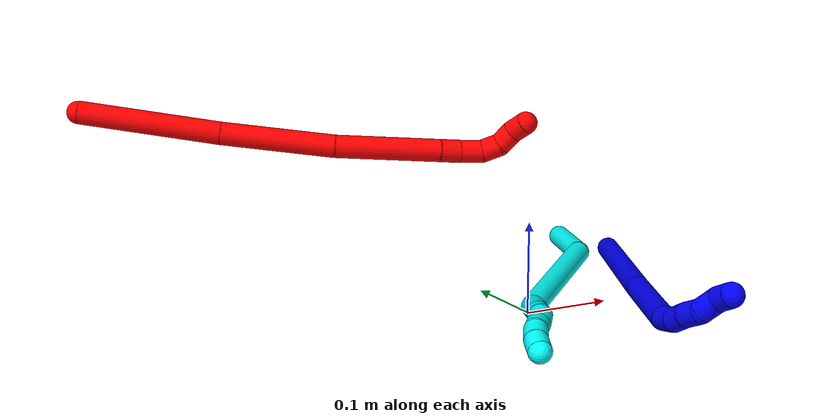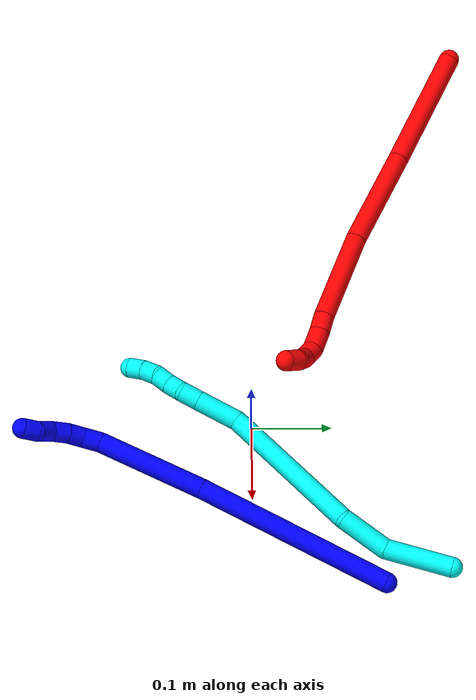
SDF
<sdf version="1.7">
 <world name="default">
  <plugin name="TubeGeneratorPlugin" filename="libtube_generator_plugin.so"/>
  <model name="photoneo_s_sensor">
   <static>1</static>
   <pose>0 0 2 1.57079 1.57079 3.14159</pose>
   <link name="link">
    <inertial><mass>0.1</mass></inertial>
    <sensor name="sensor" type="depth">
     <update_rate>30</update_rate>
     <camera>
      <horizontal_fov>1.22</horizontal_fov>
      <image><width>1920</width><height>1200</height><format>B8G8R8</format></image>
      <clip><near>0.1</near><far>4</far></clip>
      <depth_camera><output>points</output></depth_camera>
     </camera>
     <plugin name="camera_plugin" filename="libgazebo_ros_depth_camera.so">
      <baseline>0.2</baseline>
      <alwaysOn>1</alwaysOn>
      <updateRate>0.0</updateRate>
      <cameraName>camera_ir</cameraName>
      <imageTopicName>/camera/color/image_raw</imageTopicName>
      <cameraInfoTopicName>/camera/color/camera_info</cameraInfoTopicName>
      <depthImageTopicName>/camera/depth/image_raw</depthImageTopicName>
      <depthImageCameraInfoTopicName>/camera/depth/camera_info</depthImageCameraInfoTopicName>
      <pointCloudTopicName>/camera/depth/points</pointCloudTopicName>
      <frameName>fr_optical</frameName>
      <pointCloudCutoff>0.1</pointCloudCutoff>
      <pointCloudCutoffMax>2.0</pointCloudCutoffMax>
      <distortionK1>0</distortionK1>
      <distortionK2>0</distortionK2>
      <distortionK3>0</distortionK3>
      <distortionT1>0</distortionT1>
      <distortionT2>0</distortionT2>
      <CxPrime>0</CxPrime>
      <Cx>0</Cx>
      <Cy>0</Cy>
      <focalLength>0</focalLength>
      <hackBaseline>0</hackBaseline>
     </plugin>
    </sensor>
   </link>
  </model>
  <gravity>0 0 -9.8</gravity>
  <magnetic_field>6e-06 2.3e-05 -4.2e-05</magnetic_field>
  <atmosphere type="adiabatic"/>
  <physics name="default_physics" default="0" type="ode">
   <max_step_size>0.003</max_step_size>
   <real_time_factor>1</real_time_factor>
   <real_time_update_rate>1000</real_time_update_rate>
   <max_contacts>10000</max_contacts>
   <ode>
    <solver>
     <type>quick</type>
     <iters>100</iters>
     <sor>1.3</sor>
     <use_dynamic_moi_rescaling>0</use_dynamic_moi_rescaling>
    </solver>
    <constraints>
     <contact_max_correcting_vel>0</contact_max_correcting_vel>
     <contact_surface_layer>0.001</contact_surface_layer>
     <cfm>0</cfm>
     <erp>0.2</erp>
    </constraints>
   </ode>
  </physics>
  <scene><ambient>0.4 0.4 0.4 1</ambient><background>0.7 0.7 0.7 1</background><shadows>0</shadows></scene>
  <audio><device>default</device></audio>
  <spherical_coordinates>
   <surface_model>EARTH_WGS84</surface_model>
   <latitude_deg>0</latitude_deg>
   <longitude_deg>0</longitude_deg>
   <elevation>0</elevation>
   <heading_deg>0</heading_deg>
  </spherical_coordinates>
  <model name="bin">
   <static>1</static>
   <link name="bottom">
    <collision name="collision-bottom">
     <pose>0 0 -0.01 0 -0 0</pose>
     <geometry><box><size>0.8 0.6 0.02</size></box></geometry>
     <surface>
      <friction><ode><mu>100</mu><mu2>100</mu2></ode></friction>
      <contact><collide_bitmask>65535</collide_bitmask></contact>
     </surface>
    </collision>
   </link>
   <link name="west_wall">
    <collision name="collision-west_wall">
     <pose>-0.41 0 0.1 0 -0 0</pose>
     <geometry><box><size>0.02 0.6 0.2</size></box></geometry>
     <surface>
      <friction><ode><mu>100</mu><mu2>100</mu2></ode></friction>
      <contact><collide_bitmask>65535</collide_bitmask></contact>
     </surface>
    </collision>
   </link>
   <link name="east_wall">
    <collision name="collision-east_wall">
     <pose>0.41 0 0.1 0 -0 0</pose>
     <geometry><box><size>0.02 0.6 0.2</size></box></geometry>
     <surface>
      <friction><ode><mu>100</mu><mu2>100</mu2></ode></friction>
      <contact><collide_bitmask>65535</collide_bitmask></contact>
     </surface>
    </collision>
   </link>
   <link name="south_wall">
    <collision name="collision-south_wall">
     <pose>0 -0.31 0.1 0 -0 0</pose>
     <geometry><box><size>0.8 0.02 0.2</size></box></geometry>
     <surface>
      <friction><ode><mu>100</mu><mu2>100</mu2></ode></friction>
      <contact><collide_bitmask>65535</collide_bitmask></contact>
     </surface>
    </collision>
   </link>
   <link name="north_wall">
    <collision name="collision-north_wall">
     <pose>0 0.31 0.1 0 -0 0</pose>
     <geometry><box><size>0.8 0.02 0.2</size></box></geometry>
     <surface>
      <friction><ode><mu>100</mu><mu2>100</mu2></ode></friction>
      <contact><collide_bitmask>65535</collide_bitmask></contact>
     </surface>
    </collision>
   </link>
  </model>
  <model name="1">
   <static>0</static>
   <link name="1">
    <collision name="collision-cylinder-e_1_1_4">
     <pose>-0.09721 -0.041036 -0.070021 2.61149 -0.87514 -2.09009</pose>
     <geometry><cylinder><radius>0.0125</radius><length>0.253272</length></cylinder></geometry>
     <surface>
      <friction><ode><mu>1.16</mu><mu2>1.16</mu2><slip1>0</slip1><slip2>0</slip2></ode></friction>
      <contact><ode><kp>1e+06</kp><kd>1</kd><max_vel>0</max_vel><min_depth>0.001</min_depth></ode></contact>
     </surface>
    </collision>
    <visual name="visual-cylinder-e_1_1_4">
     <pose>-0.09721 -0.041036 -0.070021 2.61149 -0.87514 -2.09009</pose>
     <geometry><cylinder><radius>0.0125</radius><length>0.253272</length></cylinder></geometry>
     <material><ambient>0 0 1 1</ambient></material>
    </visual>
    <collision name="collision-cylinder-e_2_4_5">
     <pose>-0.249559 -0.103907 -0.176519 2.60221 -0.913976 -2.1173</pose>
     <geometry><cylinder><radius>0.0125</radius><length>0.139251</length></cylinder></geometry>
     <surface>
      <friction><ode><mu>1.16</mu><mu2>1.16</mu2><slip1>0</slip1><slip2>0</slip2></ode></friction>
      <contact><ode><kp>1e+06</kp><kd>1</kd><max_vel>0</max_vel><min_depth>0.001</min_depth></ode></contact>
     </surface>
    </collision>
    <visual name="visual-cylinder-e_2_4_5">
     <pose>-0.249559 -0.103907 -0.176519 2.60221 -0.913976 -2.1173</pose>
     <geometry><cylinder><radius>0.0125</radius><length>0.139251</length></cylinder></geometry>
     <material><ambient>0 0 1 1</ambient></material>
    </visual>
    <collision name="collision-cylinder-e_3_5_6">
     <pose>-0.314666 -0.125978 -0.219106 3.10304 -1.02064 -3.07275</pose>
     <geometry><cylinder><radius>0.0125</radius><length>0.023387</length></cylinder></geometry>
     <surface>
      <friction><ode><mu>1.16</mu><mu2>1.16</mu2><slip1>0</slip1><slip2>0</slip2></ode></friction>
      <contact><ode><kp>1e+06</kp><kd>1</kd><max_vel>0</max_vel><min_depth>0.001</min_depth></ode></contact>
     </surface>
    </collision>
    <visual name="visual-cylinder-e_3_5_6">
     <pose>-0.314666 -0.125978 -0.219106 3.10304 -1.02064 -3.07275</pose>
     <geometry><cylinder><radius>0.0125</radius><length>0.023387</length></cylinder></geometry>
     <material><ambient>0 0 1 1</ambient></material>
    </visual>
    <collision name="collision-cylinder-e_4_6_7">
     <pose>-0.332075 -0.123606 -0.231367 -2.74078 -0.839108 2.28689</pose>
     <geometry><cylinder><radius>0.0125</radius><length>0.020002</length></cylinder></geometry>
     <surface>
      <friction><ode><mu>1.16</mu><mu2>1.16</mu2><slip1>0</slip1><slip2>0</slip2></ode></friction>
      <contact><ode><kp>1e+06</kp><kd>1</kd><max_vel>0</max_vel><min_depth>0.001</min_depth></ode></contact>
     </surface>
    </collision>
    <visual name="visual-cylinder-e_4_6_7">
     <pose>-0.332075 -0.123606 -0.231367 -2.74078 -0.839108 2.28689</pose>
     <geometry><cylinder><radius>0.0125</radius><length>0.020002</length></cylinder></geometry>
     <material><ambient>0 0 1 1</ambient></material>
    </visual>
    <collision name="collision-cylinder-e_5_7_8">
     <pose>-0.348299 -0.117535 -0.24289 -2.56874 -0.941788 2.09262</pose>
     <geometry><cylinder><radius>0.0125</radius><length>0.021724</length></cylinder></geometry>
     <surface>
      <friction><ode><mu>1.16</mu><mu2>1.16</mu2><slip1>0</slip1><slip2>0</slip2></ode></friction>
      <contact><ode><kp>1e+06</kp><kd>1</kd><max_vel>0</max_vel><min_depth>0.001</min_depth></ode></contact>
     </surface>
    </collision>
    <visual name="visual-cylinder-e_5_7_8">
     <pose>-0.348299 -0.117535 -0.24289 -2.56874 -0.941788 2.09262</pose>
     <geometry><cylinder><radius>0.0125</radius><length>0.021724</length></cylinder></geometry>
     <material><ambient>0 0 1 1</ambient></material>
    </visual>
    <collision name="collision-cylinder-e_6_8_9">
     <pose>-0.363213 -0.106396 -0.253483 -2.16835 -0.583592 1.03273</pose>
     <geometry><cylinder><radius>0.0125</radius><length>0.022251</length></cylinder></geometry>
     <surface>
      <friction><ode><mu>1.16</mu><mu2>1.16</mu2><slip1>0</slip1><slip2>0</slip2></ode></friction>
      <contact><ode><kp>1e+06</kp><kd>1</kd><max_vel>0</max_vel><min_depth>0.001</min_depth></ode></contact>
     </surface>
    </collision>
    <visual name="visual-cylinder-e_6_8_9">
     <pose>-0.363213 -0.106396 -0.253483 -2.16835 -0.583592 1.03273</pose>
     <geometry><cylinder><radius>0.0125</radius><length>0.022251</length></cylinder></geometry>
     <material><ambient>0 0 1 1</ambient></material>
    </visual>
    <collision name="collision-cylinder-e_7_9_2">
     <pose>-0.377274 -0.096077 -0.264298 -2.69987 -0.9085 2.27965</pose>
     <geometry><cylinder><radius>0.0125</radius><length>0.020114</length></cylinder></geometry>
     <surface>
      <friction><ode><mu>1.16</mu><mu2>1.16</mu2><slip1>0</slip1><slip2>0</slip2></ode></friction>
      <contact><ode><kp>1e+06</kp><kd>1</kd><max_vel>0</max_vel><min_depth>0.001</min_depth></ode></contact>
     </surface>
    </collision>
    <visual name="visual-cylinder-e_7_9_2">
     <pose>-0.377274 -0.096077 -0.264298 -2.69987 -0.9085 2.27965</pose>
     <geometry><cylinder><radius>0.0125</radius><length>0.020114</length></cylinder></geometry>
     <material><ambient>0 0 1 1</ambient></material>
    </visual>
    <collision name="collision-sphere-2">
     <pose>-0.385205 -0.093433 -0.269889 0 -0 0</pose>
     <geometry><sphere><radius>0.0125</radius></sphere></geometry>
     <surface>
      <friction><ode><mu>1.16</mu><mu2>1.16</mu2><slip1>0</slip1><slip2>0</slip2></ode></friction>
      <contact><ode><kp>1e+06</kp><kd>1</kd><max_vel>0</max_vel><min_depth>0.001</min_depth></ode></contact>
     </surface>
    </collision>
    <visual name="visual-sphere-2">
     <pose>-0.385205 -0.093433 -0.269889 0 -0 0</pose>
     <geometry><sphere><radius>0.0125</radius></sphere></geometry>
     <material><ambient>0 0 1 1</ambient></material>
    </visual>
    <collision name="collision-sphere-9">
     <pose>-0.369343 -0.098721 -0.258707 0 -0 0</pose>
     <geometry><sphere><radius>0.0125</radius></sphere></geometry>
     <surface>
      <friction><ode><mu>1.16</mu><mu2>1.16</mu2><slip1>0</slip1><slip2>0</slip2></ode></friction>
      <contact><ode><kp>1e+06</kp><kd>1</kd><max_vel>0</max_vel><min_depth>0.001</min_depth></ode></contact>
     </surface>
    </collision>
    <visual name="visual-sphere-9">
     <pose>-0.369343 -0.098721 -0.258707 0 -0 0</pose>
     <geometry><sphere><radius>0.0125</radius></sphere></geometry>
     <material><ambient>0 0 1 1</ambient></material>
    </visual>
    <collision name="collision-sphere-4">
     <pose>-0.19442 -0.082072 -0.140042 0 -0 0</pose>
     <geometry><sphere><radius>0.0125</radius></sphere></geometry>
     <surface>
      <friction><ode><mu>1.16</mu><mu2>1.16</mu2><slip1>0</slip1><slip2>0</slip2></ode></friction>
      <contact><ode><kp>1e+06</kp><kd>1</kd><max_vel>0</max_vel><min_depth>0.001</min_depth></ode></contact>
     </surface>
    </collision>
    <visual name="visual-sphere-4">
     <pose>-0.19442 -0.082072 -0.140042 0 -0 0</pose>
     <geometry><sphere><radius>0.0125</radius></sphere></geometry>
     <material><ambient>0 0 1 1</ambient></material>
    </visual>
    <collision name="collision-sphere-1">
     <geometry><sphere><radius>0.0125</radius></sphere></geometry>
     <surface>
      <friction><ode><mu>1.16</mu><mu2>1.16</mu2><slip1>0</slip1><slip2>0</slip2></ode></friction>
      <contact><ode><kp>1e+06</kp><kd>1</kd><max_vel>0</max_vel><min_depth>0.001</min_depth></ode></contact>
     </surface>
    </collision>
    <visual name="visual-sphere-1">
     <geometry><sphere><radius>0.0125</radius></sphere></geometry>
     <material><ambient>0 0 1 1</ambient></material>
    </visual>
    <collision name="collision-sphere-8">
     <pose>-0.357082 -0.114071 -0.24826 0 -0 0</pose>
     <geometry><sphere><radius>0.0125</radius></sphere></geometry>
     <surface>
      <friction><ode><mu>1.16</mu><mu2>1.16</mu2><slip1>0</slip1><slip2>0</slip2></ode></friction>
      <contact><ode><kp>1e+06</kp><kd>1</kd><max_vel>0</max_vel><min_depth>0.001</min_depth></ode></contact>
     </surface>
    </collision>
    <visual name="visual-sphere-8">
     <pose>-0.357082 -0.114071 -0.24826 0 -0 0</pose>
     <geometry><sphere><radius>0.0125</radius></sphere></geometry>
     <material><ambient>0 0 1 1</ambient></material>
    </visual>
    <collision name="collision-sphere-5">
     <pose>-0.304698 -0.125742 -0.212997 0 -0 0</pose>
     <geometry><sphere><radius>0.0125</radius></sphere></geometry>
     <surface>
      <friction><ode><mu>1.16</mu><mu2>1.16</mu2><slip1>0</slip1><slip2>0</slip2></ode></friction>
      <contact><ode><kp>1e+06</kp><kd>1</kd><max_vel>0</max_vel><min_depth>0.001</min_depth></ode></contact>
     </surface>
    </collision>
    <visual name="visual-sphere-5">
     <pose>-0.304698 -0.125742 -0.212997 0 -0 0</pose>
     <geometry><sphere><radius>0.0125</radius></sphere></geometry>
     <material><ambient>0 0 1 1</ambient></material>
    </visual>
    <collision name="collision-sphere-6">
     <pose>-0.324634 -0.126213 -0.225215 0 -0 0</pose>
     <geometry><sphere><radius>0.0125</radius></sphere></geometry>
     <surface>
      <friction><ode><mu>1.16</mu><mu2>1.16</mu2><slip1>0</slip1><slip2>0</slip2></ode></friction>
      <contact><ode><kp>1e+06</kp><kd>1</kd><max_vel>0</max_vel><min_depth>0.001</min_depth></ode></contact>
     </surface>
    </collision>
    <visual name="visual-sphere-6">
     <pose>-0.324634 -0.126213 -0.225215 0 -0 0</pose>
     <geometry><sphere><radius>0.0125</radius></sphere></geometry>
     <material><ambient>0 0 1 1</ambient></material>
    </visual>
    <collision name="collision-sphere-7">
     <pose>-0.339516 -0.120999 -0.23752 0 -0 0</pose>
     <geometry><sphere><radius>0.0125</radius></sphere></geometry>
     <surface>
      <friction><ode><mu>1.16</mu><mu2>1.16</mu2><slip1>0</slip1><slip2>0</slip2></ode></friction>
      <contact><ode><kp>1e+06</kp><kd>1</kd><max_vel>0</max_vel><min_depth>0.001</min_depth></ode></contact>
     </surface>
    </collision>
    <visual name="visual-sphere-7">
     <pose>-0.339516 -0.120999 -0.23752 0 -0 0</pose>
     <geometry><sphere><radius>0.0125</radius></sphere></geometry>
     <material><ambient>0 0 1 1</ambient></material>
    </visual>
    <inertial>
     <pose>-0.193219 -0.074268 -0.136599 0 -0 0</pose>
     <mass>0.5</mass>
     <inertia>
      <ixx>-0.001414</ixx>
      <ixy>0</ixy>
      <ixz>0</ixz>
      <iyy>0.000349</iyy>
      <iyz>0</iyz>
      <izz>0.001726</izz>
     </inertia>
    </inertial>
   </link>
   <pose>0.219458 0.161072 0.011947 2.49354 -0.218392 1.71379</pose>
  </model>
  <model name="2">
   <static>0</static>
   <link name="2">
    <collision name="collision-cylinder-e_1_1_4">
     <pose>-0.002644 -0.00409 -0.076487 3.08818 -0.0345 -1.14681</pose>
     <geometry><cylinder><radius>0.0125</radius><length>0.153283</length></cylinder></geometry>
     <surface>
      <friction><ode><mu>1.16</mu><mu2>1.16</mu2><slip1>0</slip1><slip2>0</slip2></ode></friction>
      <contact><ode><kp>1e+06</kp><kd>1</kd><max_vel>0</max_vel><min_depth>0.001</min_depth></ode></contact>
     </surface>
    </collision>
    <visual name="visual-cylinder-e_1_1_4">
     <pose>-0.002644 -0.00409 -0.076487 3.08818 -0.0345 -1.14681</pose>
     <geometry><cylinder><radius>0.0125</radius><length>0.153283</length></cylinder></geometry>
     <material><ambient>1 0 0 1</ambient></material>
    </visual>
    <collision name="collision-cylinder-e_2_4_5">
     <pose>-0.005435 -0.012428 -0.214661 3.07281 -0.002384 -0.069278</pose>
     <geometry><cylinder><radius>0.0125</radius><length>0.123668</length></cylinder></geometry>
     <surface>
      <friction><ode><mu>1.16</mu><mu2>1.16</mu2><slip1>0</slip1><slip2>0</slip2></ode></friction>
      <contact><ode><kp>1e+06</kp><kd>1</kd><max_vel>0</max_vel><min_depth>0.001</min_depth></ode></contact>
     </surface>
    </collision>
    <visual name="visual-cylinder-e_2_4_5">
     <pose>-0.005435 -0.012428 -0.214661 3.07281 -0.002384 -0.069278</pose>
     <geometry><cylinder><radius>0.0125</radius><length>0.123668</length></cylinder></geometry>
     <material><ambient>1 0 0 1</ambient></material>
    </visual>
    <collision name="collision-cylinder-e_3_5_6">
     <pose>-0.001101 -0.016094 -0.333577 -3.13139 0.078131 -2.88194</pose>
     <geometry><cylinder><radius>0.0125</radius><length>0.114813</length></cylinder></geometry>
     <surface>
      <friction><ode><mu>1.16</mu><mu2>1.16</mu2><slip1>0</slip1><slip2>0</slip2></ode></friction>
      <contact><ode><kp>1e+06</kp><kd>1</kd><max_vel>0</max_vel><min_depth>0.001</min_depth></ode></contact>
     </surface>
    </collision>
    <visual name="visual-cylinder-e_3_5_6">
     <pose>-0.001101 -0.016094 -0.333577 -3.13139 0.078131 -2.88194</pose>
     <geometry><cylinder><radius>0.0125</radius><length>0.114813</length></cylinder></geometry>
     <material><ambient>1 0 0 1</ambient></material>
    </visual>
    <collision name="collision-cylinder-e_4_6_7">
     <pose>0.004353 -0.014302 -0.401814 -3.03236 0.087667 -1.35227</pose>
     <geometry><cylinder><radius>0.0125</radius><length>0.022235</length></cylinder></geometry>
     <surface>
      <friction><ode><mu>1.16</mu><mu2>1.16</mu2><slip1>0</slip1><slip2>0</slip2></ode></friction>
      <contact><ode><kp>1e+06</kp><kd>1</kd><max_vel>0</max_vel><min_depth>0.001</min_depth></ode></contact>
     </surface>
    </collision>
    <visual name="visual-cylinder-e_4_6_7">
     <pose>0.004353 -0.014302 -0.401814 -3.03236 0.087667 -1.35227</pose>
     <geometry><cylinder><radius>0.0125</radius><length>0.022235</length></cylinder></geometry>
     <material><ambient>1 0 0 1</ambient></material>
    </visual>
    <collision name="collision-cylinder-e_5_7_8">
     <pose>0.006802 -0.012743 -0.425217 -3.11321 0.118501 -2.67185</pose>
     <geometry><cylinder><radius>0.0125</radius><length>0.024973</length></cylinder></geometry>
     <surface>
      <friction><ode><mu>1.16</mu><mu2>1.16</mu2><slip1>0</slip1><slip2>0</slip2></ode></friction>
      <contact><ode><kp>1e+06</kp><kd>1</kd><max_vel>0</max_vel><min_depth>0.001</min_depth></ode></contact>
     </surface>
    </collision>
    <visual name="visual-cylinder-e_5_7_8">
     <pose>0.006802 -0.012743 -0.425217 -3.11321 0.118501 -2.67185</pose>
     <geometry><cylinder><radius>0.0125</radius><length>0.024973</length></cylinder></geometry>
     <material><ambient>1 0 0 1</ambient></material>
    </visual>
    <collision name="collision-cylinder-e_6_8_9">
     <pose>0.012701 -0.015216 -0.446539 2.83518 0.441224 1.9356</pose>
     <geometry><cylinder><radius>0.0125</radius><length>0.020712</length></cylinder></geometry>
     <surface>
      <friction><ode><mu>1.16</mu><mu2>1.16</mu2><slip1>0</slip1><slip2>0</slip2></ode></friction>
      <contact><ode><kp>1e+06</kp><kd>1</kd><max_vel>0</max_vel><min_depth>0.001</min_depth></ode></contact>
     </surface>
    </collision>
    <visual name="visual-cylinder-e_6_8_9">
     <pose>0.012701 -0.015216 -0.446539 2.83518 0.441224 1.9356</pose>
     <geometry><cylinder><radius>0.0125</radius><length>0.020712</length></cylinder></geometry>
     <material><ambient>1 0 0 1</ambient></material>
    </visual>
    <collision name="collision-cylinder-e_7_9_10">
     <pose>0.024718 -0.0213 -0.461207 2.62508 0.855312 2.09108</pose>
     <geometry><cylinder><radius>0.0125</radius><length>0.020122</length></cylinder></geometry>
     <surface>
      <friction><ode><mu>1.16</mu><mu2>1.16</mu2><slip1>0</slip1><slip2>0</slip2></ode></friction>
      <contact><ode><kp>1e+06</kp><kd>1</kd><max_vel>0</max_vel><min_depth>0.001</min_depth></ode></contact>
     </surface>
    </collision>
    <visual name="visual-cylinder-e_7_9_10">
     <pose>0.024718 -0.0213 -0.461207 2.62508 0.855312 2.09108</pose>
     <geometry><cylinder><radius>0.0125</radius><length>0.020122</length></cylinder></geometry>
     <material><ambient>1 0 0 1</ambient></material>
    </visual>
    <collision name="collision-cylinder-e_8_10_2">
     <pose>0.03696 -0.031556 -0.472547 2.24593 0.478452 0.9396</pose>
     <geometry><cylinder><radius>0.0125</radius><length>0.020193</length></cylinder></geometry>
     <surface>
      <friction><ode><mu>1.16</mu><mu2>1.16</mu2><slip1>0</slip1><slip2>0</slip2></ode></friction>
      <contact><ode><kp>1e+06</kp><kd>1</kd><max_vel>0</max_vel><min_depth>0.001</min_depth></ode></contact>
     </surface>
    </collision>
    <visual name="visual-cylinder-e_8_10_2">
     <pose>0.03696 -0.031556 -0.472547 2.24593 0.478452 0.9396</pose>
     <geometry><cylinder><radius>0.0125</radius><length>0.020193</length></cylinder></geometry>
     <material><ambient>1 0 0 1</ambient></material>
    </visual>
    <collision name="collision-sphere-2">
     <pose>0.041608 -0.038552 -0.478149 0 -0 0</pose>
     <geometry><sphere><radius>0.0125</radius></sphere></geometry>
     <surface>
      <friction><ode><mu>1.16</mu><mu2>1.16</mu2><slip1>0</slip1><slip2>0</slip2></ode></friction>
      <contact><ode><kp>1e+06</kp><kd>1</kd><max_vel>0</max_vel><min_depth>0.001</min_depth></ode></contact>
     </surface>
    </collision>
    <visual name="visual-sphere-2">
     <pose>0.041608 -0.038552 -0.478149 0 -0 0</pose>
     <geometry><sphere><radius>0.0125</radius></sphere></geometry>
     <material><ambient>1 0 0 1</ambient></material>
    </visual>
    <collision name="collision-sphere-10">
     <pose>0.032312 -0.024559 -0.466946 0 -0 0</pose>
     <geometry><sphere><radius>0.0125</radius></sphere></geometry>
     <surface>
      <friction><ode><mu>1.16</mu><mu2>1.16</mu2><slip1>0</slip1><slip2>0</slip2></ode></friction>
      <contact><ode><kp>1e+06</kp><kd>1</kd><max_vel>0</max_vel><min_depth>0.001</min_depth></ode></contact>
     </surface>
    </collision>
    <visual name="visual-sphere-10">
     <pose>0.032312 -0.024559 -0.466946 0 -0 0</pose>
     <geometry><sphere><radius>0.0125</radius></sphere></geometry>
     <material><ambient>1 0 0 1</ambient></material>
    </visual>
    <collision name="collision-sphere-9">
     <pose>0.017124 -0.018041 -0.455468 0 -0 0</pose>
     <geometry><sphere><radius>0.0125</radius></sphere></geometry>
     <surface>
      <friction><ode><mu>1.16</mu><mu2>1.16</mu2><slip1>0</slip1><slip2>0</slip2></ode></friction>
      <contact><ode><kp>1e+06</kp><kd>1</kd><max_vel>0</max_vel><min_depth>0.001</min_depth></ode></contact>
     </surface>
    </collision>
    <visual name="visual-sphere-9">
     <pose>0.017124 -0.018041 -0.455468 0 -0 0</pose>
     <geometry><sphere><radius>0.0125</radius></sphere></geometry>
     <material><ambient>1 0 0 1</ambient></material>
    </visual>
    <collision name="collision-sphere-4">
     <pose>-0.005287 -0.008179 -0.152973 0 -0 0</pose>
     <geometry><sphere><radius>0.0125</radius></sphere></geometry>
     <surface>
      <friction><ode><mu>1.16</mu><mu2>1.16</mu2><slip1>0</slip1><slip2>0</slip2></ode></friction>
      <contact><ode><kp>1e+06</kp><kd>1</kd><max_vel>0</max_vel><min_depth>0.001</min_depth></ode></contact>
     </surface>
    </collision>
    <visual name="visual-sphere-4">
     <pose>-0.005287 -0.008179 -0.152973 0 -0 0</pose>
     <geometry><sphere><radius>0.0125</radius></sphere></geometry>
     <material><ambient>1 0 0 1</ambient></material>
    </visual>
    <collision name="collision-sphere-1">
     <geometry><sphere><radius>0.0125</radius></sphere></geometry>
     <surface>
      <friction><ode><mu>1.16</mu><mu2>1.16</mu2><slip1>0</slip1><slip2>0</slip2></ode></friction>
      <contact><ode><kp>1e+06</kp><kd>1</kd><max_vel>0</max_vel><min_depth>0.001</min_depth></ode></contact>
     </surface>
    </collision>
    <visual name="visual-sphere-1">
     <geometry><sphere><radius>0.0125</radius></sphere></geometry>
     <material><ambient>1 0 0 1</ambient></material>
    </visual>
    <collision name="collision-sphere-8">
     <pose>0.008278 -0.012391 -0.437611 0 -0 0</pose>
     <geometry><sphere><radius>0.0125</radius></sphere></geometry>
     <surface>
      <friction><ode><mu>1.16</mu><mu2>1.16</mu2><slip1>0</slip1><slip2>0</slip2></ode></friction>
      <contact><ode><kp>1e+06</kp><kd>1</kd><max_vel>0</max_vel><min_depth>0.001</min_depth></ode></contact>
     </surface>
    </collision>
    <visual name="visual-sphere-8">
     <pose>0.008278 -0.012391 -0.437611 0 -0 0</pose>
     <geometry><sphere><radius>0.0125</radius></sphere></geometry>
     <material><ambient>1 0 0 1</ambient></material>
    </visual>
    <collision name="collision-sphere-5">
     <pose>-0.005582 -0.016678 -0.276348 0 -0 0</pose>
     <geometry><sphere><radius>0.0125</radius></sphere></geometry>
     <surface>
      <friction><ode><mu>1.16</mu><mu2>1.16</mu2><slip1>0</slip1><slip2>0</slip2></ode></friction>
      <contact><ode><kp>1e+06</kp><kd>1</kd><max_vel>0</max_vel><min_depth>0.001</min_depth></ode></contact>
     </surface>
    </collision>
    <visual name="visual-sphere-5">
     <pose>-0.005582 -0.016678 -0.276348 0 -0 0</pose>
     <geometry><sphere><radius>0.0125</radius></sphere></geometry>
     <material><ambient>1 0 0 1</ambient></material>
    </visual>
    <collision name="collision-sphere-6">
     <pose>0.003379 -0.01551 -0.390805 0 -0 0</pose>
     <geometry><sphere><radius>0.0125</radius></sphere></geometry>
     <surface>
      <friction><ode><mu>1.16</mu><mu2>1.16</mu2><slip1>0</slip1><slip2>0</slip2></ode></friction>
      <contact><ode><kp>1e+06</kp><kd>1</kd><max_vel>0</max_vel><min_depth>0.001</min_depth></ode></contact>
     </surface>
    </collision>
    <visual name="visual-sphere-6">
     <pose>0.003379 -0.01551 -0.390805 0 -0 0</pose>
     <geometry><sphere><radius>0.0125</radius></sphere></geometry>
     <material><ambient>1 0 0 1</ambient></material>
    </visual>
    <collision name="collision-sphere-7">
     <pose>0.005326 -0.013095 -0.412823 0 -0 0</pose>
     <geometry><sphere><radius>0.0125</radius></sphere></geometry>
     <surface>
      <friction><ode><mu>1.16</mu><mu2>1.16</mu2><slip1>0</slip1><slip2>0</slip2></ode></friction>
      <contact><ode><kp>1e+06</kp><kd>1</kd><max_vel>0</max_vel><min_depth>0.001</min_depth></ode></contact>
     </surface>
    </collision>
    <visual name="visual-sphere-7">
     <pose>0.005326 -0.013095 -0.412823 0 -0 0</pose>
     <geometry><sphere><radius>0.0125</radius></sphere></geometry>
     <material><ambient>1 0 0 1</ambient></material>
    </visual>
    <inertial>
     <pose>0.001139 -0.012058 -0.24839 0 -0 0</pose>
     <mass>0.5</mass>
     <inertia>
      <ixx>-0.00016</ixx>
      <ixy>0</ixy>
      <ixz>0</ixz>
      <iyy>-0.000483</iyy>
      <iyz>0</iyz>
      <izz>-1.2e-05</izz>
     </inertia>
    </inertial>
   </link>
   <pose>-0.41241 0.253794 0.21392 -1.10014 -1.27394 0.713439</pose>
  </model>
  <model name="3">
   <static>0</static>
   <link name="3">
    <collision name="collision-cylinder-e_1_1_4">
     <pose>-0.029508 -0.006366 0.029527 0.21235 -0.77372 -0.086781</pose>
     <geometry><cylinder><radius>0.0125</radius><length>0.084454</length></cylinder></geometry>
     <surface>
      <friction><ode><mu>1.16</mu><mu2>1.16</mu2><slip1>0</slip1><slip2>0</slip2></ode></friction>
      <contact><ode><kp>1e+06</kp><kd>1</kd><max_vel>0</max_vel><min_depth>0.001</min_depth></ode></contact>
     </surface>
    </collision>
    <visual name="visual-cylinder-e_1_1_4">
     <pose>-0.029508 -0.006366 0.029527 0.21235 -0.77372 -0.086781</pose>
     <geometry><cylinder><radius>0.0125</radius><length>0.084454</length></cylinder></geometry>
     <material><ambient>0.003922 1 0.996078 1</ambient></material>
    </visual>
    <collision name="collision-cylinder-e_2_4_5">
     <pose>-0.087501 -0.014065 0.072112 0.101719 -1.139 -0.06516</pose>
     <geometry><cylinder><radius>0.0125</radius><length>0.062727</length></cylinder></geometry>
     <surface>
      <friction><ode><mu>1.16</mu><mu2>1.16</mu2><slip1>0</slip1><slip2>0</slip2></ode></friction>
      <contact><ode><kp>1e+06</kp><kd>1</kd><max_vel>0</max_vel><min_depth>0.001</min_depth></ode></contact>
     </surface>
    </collision>
    <visual name="visual-cylinder-e_2_4_5">
     <pose>-0.087501 -0.014065 0.072112 0.101719 -1.139 -0.06516</pose>
     <geometry><cylinder><radius>0.0125</radius><length>0.062727</length></cylinder></geometry>
     <material><ambient>0.003922 1 0.996078 1</ambient></material>
    </visual>
    <collision name="collision-cylinder-e_3_5_6">
     <pose>-0.200766 -0.054482 0.110285 0.999641 -1.06951 -0.625654</pose>
     <geometry><cylinder><radius>0.0125</radius><length>0.19335</length></cylinder></geometry>
     <surface>
      <friction><ode><mu>1.16</mu><mu2>1.16</mu2><slip1>0</slip1><slip2>0</slip2></ode></friction>
      <contact><ode><kp>1e+06</kp><kd>1</kd><max_vel>0</max_vel><min_depth>0.001</min_depth></ode></contact>
     </surface>
    </collision>
    <visual name="visual-cylinder-e_3_5_6">
     <pose>-0.200766 -0.054482 0.110285 0.999641 -1.06951 -0.625654</pose>
     <geometry><cylinder><radius>0.0125</radius><length>0.19335</length></cylinder></geometry>
     <material><ambient>0.003922 1 0.996078 1</ambient></material>
    </visual>
    <collision name="collision-cylinder-e_4_6_7">
     <pose>-0.308653 -0.095431 0.150301 0.124535 -0.994481 -0.06765</pose>
     <geometry><cylinder><radius>0.0125</radius><length>0.055116</length></cylinder></geometry>
     <surface>
      <friction><ode><mu>1.16</mu><mu2>1.16</mu2><slip1>0</slip1><slip2>0</slip2></ode></friction>
      <contact><ode><kp>1e+06</kp><kd>1</kd><max_vel>0</max_vel><min_depth>0.001</min_depth></ode></contact>
     </surface>
    </collision>
    <visual name="visual-cylinder-e_4_6_7">
     <pose>-0.308653 -0.095431 0.150301 0.124535 -0.994481 -0.06765</pose>
     <geometry><cylinder><radius>0.0125</radius><length>0.055116</length></cylinder></geometry>
     <material><ambient>0.003922 1 0.996078 1</ambient></material>
    </visual>
    <collision name="collision-cylinder-e_5_7_8">
     <pose>-0.342034 -0.097961 0.171689 0.102064 -1.00531 -0.056144</pose>
     <geometry><cylinder><radius>0.0125</radius><length>0.024339</length></cylinder></geometry>
     <surface>
      <friction><ode><mu>1.16</mu><mu2>1.16</mu2><slip1>0</slip1><slip2>0</slip2></ode></friction>
      <contact><ode><kp>1e+06</kp><kd>1</kd><max_vel>0</max_vel><min_depth>0.001</min_depth></ode></contact>
     </surface>
    </collision>
    <visual name="visual-cylinder-e_5_7_8">
     <pose>-0.342034 -0.097961 0.171689 0.102064 -1.00531 -0.056144</pose>
     <geometry><cylinder><radius>0.0125</radius><length>0.024339</length></cylinder></geometry>
     <material><ambient>0.003922 1 0.996078 1</ambient></material>
    </visual>
    <collision name="collision-cylinder-e_6_8_9">
     <pose>-0.360122 -0.103129 0.1825 0.805761 -0.896601 -0.404362</pose>
     <geometry><cylinder><radius>0.0125</radius><length>0.020002</length></cylinder></geometry>
     <surface>
      <friction><ode><mu>1.16</mu><mu2>1.16</mu2><slip1>0</slip1><slip2>0</slip2></ode></friction>
      <contact><ode><kp>1e+06</kp><kd>1</kd><max_vel>0</max_vel><min_depth>0.001</min_depth></ode></contact>
     </surface>
    </collision>
    <visual name="visual-cylinder-e_6_8_9">
     <pose>-0.360122 -0.103129 0.1825 0.805761 -0.896601 -0.404362</pose>
     <geometry><cylinder><radius>0.0125</radius><length>0.020002</length></cylinder></geometry>
     <material><ambient>0.003922 1 0.996078 1</ambient></material>
    </visual>
    <collision name="collision-cylinder-e_7_9_10">
     <pose>-0.376819 -0.110327 0.190556 0.625406 -1.09271 -0.388257</pose>
     <geometry><cylinder><radius>0.0125</radius><length>0.02001</length></cylinder></geometry>
     <surface>
      <friction><ode><mu>1.16</mu><mu2>1.16</mu2><slip1>0</slip1><slip2>0</slip2></ode></friction>
      <contact><ode><kp>1e+06</kp><kd>1</kd><max_vel>0</max_vel><min_depth>0.001</min_depth></ode></contact>
     </surface>
    </collision>
    <visual name="visual-cylinder-e_7_9_10">
     <pose>-0.376819 -0.110327 0.190556 0.625406 -1.09271 -0.388257</pose>
     <geometry><cylinder><radius>0.0125</radius><length>0.02001</length></cylinder></geometry>
     <material><ambient>0.003922 1 0.996078 1</ambient></material>
    </visual>
    <collision name="collision-cylinder-e_8_10_11">
     <pose>-0.392814 -0.117498 0.19971 0.690068 -0.791072 -0.297915</pose>
     <geometry><cylinder><radius>0.0125</radius><length>0.020002</length></cylinder></geometry>
     <surface>
      <friction><ode><mu>1.16</mu><mu2>1.16</mu2><slip1>0</slip1><slip2>0</slip2></ode></friction>
      <contact><ode><kp>1e+06</kp><kd>1</kd><max_vel>0</max_vel><min_depth>0.001</min_depth></ode></contact>
     </surface>
    </collision>
    <visual name="visual-cylinder-e_8_10_11">
     <pose>-0.392814 -0.117498 0.19971 0.690068 -0.791072 -0.297915</pose>
     <geometry><cylinder><radius>0.0125</radius><length>0.020002</length></cylinder></geometry>
     <material><ambient>0.003922 1 0.996078 1</ambient></material>
    </visual>
    <collision name="collision-cylinder-e_9_11_2">
     <pose>-0.405861 -0.126105 0.212041 0.538953 -0.635433 -0.18116</pose>
     <geometry><cylinder><radius>0.0125</radius><length>0.020002</length></cylinder></geometry>
     <surface>
      <friction><ode><mu>1.16</mu><mu2>1.16</mu2><slip1>0</slip1><slip2>0</slip2></ode></friction>
      <contact><ode><kp>1e+06</kp><kd>1</kd><max_vel>0</max_vel><min_depth>0.001</min_depth></ode></contact>
     </surface>
    </collision>
    <visual name="visual-cylinder-e_9_11_2">
     <pose>-0.405861 -0.126105 0.212041 0.538953 -0.635433 -0.18116</pose>
     <geometry><cylinder><radius>0.0125</radius><length>0.020002</length></cylinder></geometry>
     <material><ambient>0.003922 1 0.996078 1</ambient></material>
    </visual>
    <collision name="collision-sphere-2">
     <pose>-0.411797 -0.130236 0.218948 0 -0 0</pose>
     <geometry><sphere><radius>0.0125</radius></sphere></geometry>
     <surface>
      <friction><ode><mu>1.16</mu><mu2>1.16</mu2><slip1>0</slip1><slip2>0</slip2></ode></friction>
      <contact><ode><kp>1e+06</kp><kd>1</kd><max_vel>0</max_vel><min_depth>0.001</min_depth></ode></contact>
     </surface>
    </collision>
    <visual name="visual-sphere-2">
     <pose>-0.411797 -0.130236 0.218948 0 -0 0</pose>
     <geometry><sphere><radius>0.0125</radius></sphere></geometry>
     <material><ambient>0.003922 1 0.996078 1</ambient></material>
    </visual>
    <collision name="collision-sphere-11">
     <pose>-0.399925 -0.121974 0.205133 0 -0 0</pose>
     <geometry><sphere><radius>0.0125</radius></sphere></geometry>
     <surface>
      <friction><ode><mu>1.16</mu><mu2>1.16</mu2><slip1>0</slip1><slip2>0</slip2></ode></friction>
      <contact><ode><kp>1e+06</kp><kd>1</kd><max_vel>0</max_vel><min_depth>0.001</min_depth></ode></contact>
     </surface>
    </collision>
    <visual name="visual-sphere-11">
     <pose>-0.399925 -0.121974 0.205133 0 -0 0</pose>
     <geometry><sphere><radius>0.0125</radius></sphere></geometry>
     <material><ambient>0.003922 1 0.996078 1</ambient></material>
    </visual>
    <collision name="collision-sphere-10">
     <pose>-0.385702 -0.113022 0.194288 0 -0 0</pose>
     <geometry><sphere><radius>0.0125</radius></sphere></geometry>
     <surface>
      <friction><ode><mu>1.16</mu><mu2>1.16</mu2><slip1>0</slip1><slip2>0</slip2></ode></friction>
      <contact><ode><kp>1e+06</kp><kd>1</kd><max_vel>0</max_vel><min_depth>0.001</min_depth></ode></contact>
     </surface>
    </collision>
    <visual name="visual-sphere-10">
     <pose>-0.385702 -0.113022 0.194288 0 -0 0</pose>
     <geometry><sphere><radius>0.0125</radius></sphere></geometry>
     <material><ambient>0.003922 1 0.996078 1</ambient></material>
    </visual>
    <collision name="collision-sphere-9">
     <pose>-0.367935 -0.107632 0.186824 0 -0 0</pose>
     <geometry><sphere><radius>0.0125</radius></sphere></geometry>
     <surface>
      <friction><ode><mu>1.16</mu><mu2>1.16</mu2><slip1>0</slip1><slip2>0</slip2></ode></friction>
      <contact><ode><kp>1e+06</kp><kd>1</kd><max_vel>0</max_vel><min_depth>0.001</min_depth></ode></contact>
     </surface>
    </collision>
    <visual name="visual-sphere-9">
     <pose>-0.367935 -0.107632 0.186824 0 -0 0</pose>
     <geometry><sphere><radius>0.0125</radius></sphere></geometry>
     <material><ambient>0.003922 1 0.996078 1</ambient></material>
    </visual>
    <collision name="collision-sphere-4">
     <pose>-0.059016 -0.012732 0.059054 0 -0 0</pose>
     <geometry><sphere><radius>0.0125</radius></sphere></geometry>
     <surface>
      <friction><ode><mu>1.16</mu><mu2>1.16</mu2><slip1>0</slip1><slip2>0</slip2></ode></friction>
      <contact><ode><kp>1e+06</kp><kd>1</kd><max_vel>0</max_vel><min_depth>0.001</min_depth></ode></contact>
     </surface>
    </collision>
    <visual name="visual-sphere-4">
     <pose>-0.059016 -0.012732 0.059054 0 -0 0</pose>
     <geometry><sphere><radius>0.0125</radius></sphere></geometry>
     <material><ambient>0.003922 1 0.996078 1</ambient></material>
    </visual>
    <collision name="collision-sphere-1">
     <geometry><sphere><radius>0.0125</radius></sphere></geometry>
     <surface>
      <friction><ode><mu>1.16</mu><mu2>1.16</mu2><slip1>0</slip1><slip2>0</slip2></ode></friction>
      <contact><ode><kp>1e+06</kp><kd>1</kd><max_vel>0</max_vel><min_depth>0.001</min_depth></ode></contact>
     </surface>
    </collision>
    <visual name="visual-sphere-1">
     <geometry><sphere><radius>0.0125</radius></sphere></geometry>
     <material><ambient>0.003922 1 0.996078 1</ambient></material>
    </visual>
    <collision name="collision-sphere-8">
     <pose>-0.352309 -0.098625 0.178176 0 -0 0</pose>
     <geometry><sphere><radius>0.0125</radius></sphere></geometry>
     <surface>
      <friction><ode><mu>1.16</mu><mu2>1.16</mu2><slip1>0</slip1><slip2>0</slip2></ode></friction>
      <contact><ode><kp>1e+06</kp><kd>1</kd><max_vel>0</max_vel><min_depth>0.001</min_depth></ode></contact>
     </surface>
    </collision>
    <visual name="visual-sphere-8">
     <pose>-0.352309 -0.098625 0.178176 0 -0 0</pose>
     <geometry><sphere><radius>0.0125</radius></sphere></geometry>
     <material><ambient>0.003922 1 0.996078 1</ambient></material>
    </visual>
    <collision name="collision-sphere-5">
     <pose>-0.115986 -0.015398 0.08517 0 -0 0</pose>
     <geometry><sphere><radius>0.0125</radius></sphere></geometry>
     <surface>
      <friction><ode><mu>1.16</mu><mu2>1.16</mu2><slip1>0</slip1><slip2>0</slip2></ode></friction>
      <contact><ode><kp>1e+06</kp><kd>1</kd><max_vel>0</max_vel><min_depth>0.001</min_depth></ode></contact>
     </surface>
    </collision>
    <visual name="visual-sphere-5">
     <pose>-0.115986 -0.015398 0.08517 0 -0 0</pose>
     <geometry><sphere><radius>0.0125</radius></sphere></geometry>
     <material><ambient>0.003922 1 0.996078 1</ambient></material>
    </visual>
    <collision name="collision-sphere-6">
     <pose>-0.285546 -0.093565 0.1354 0 -0 0</pose>
     <geometry><sphere><radius>0.0125</radius></sphere></geometry>
     <surface>
      <friction><ode><mu>1.16</mu><mu2>1.16</mu2><slip1>0</slip1><slip2>0</slip2></ode></friction>
      <contact><ode><kp>1e+06</kp><kd>1</kd><max_vel>0</max_vel><min_depth>0.001</min_depth></ode></contact>
     </surface>
    </collision>
    <visual name="visual-sphere-6">
     <pose>-0.285546 -0.093565 0.1354 0 -0 0</pose>
     <geometry><sphere><radius>0.0125</radius></sphere></geometry>
     <material><ambient>0.003922 1 0.996078 1</ambient></material>
    </visual>
    <collision name="collision-sphere-7">
     <pose>-0.331759 -0.097296 0.165202 0 -0 0</pose>
     <geometry><sphere><radius>0.0125</radius></sphere></geometry>
     <surface>
      <friction><ode><mu>1.16</mu><mu2>1.16</mu2><slip1>0</slip1><slip2>0</slip2></ode></friction>
      <contact><ode><kp>1e+06</kp><kd>1</kd><max_vel>0</max_vel><min_depth>0.001</min_depth></ode></contact>
     </surface>
    </collision>
    <visual name="visual-sphere-7">
     <pose>-0.331759 -0.097296 0.165202 0 -0 0</pose>
     <geometry><sphere><radius>0.0125</radius></sphere></geometry>
     <material><ambient>0.003922 1 0.996078 1</ambient></material>
    </visual>
    <inertial>
     <pose>-0.205706 -0.057482 0.113005 0 -0 0</pose>
     <mass>0.5</mass>
     <inertia>
      <ixx>8.9e-05</ixx>
      <ixy>0</ixy>
      <ixz>0</ixz>
      <iyy>0.000442</iyy>
      <iyz>0</iyz>
      <izz>0.000889</izz>
     </inertia>
    </inertial>
   </link>
   <pose>0.200112 0.240996 0.012501 1.7857 0.398261 0.552598</pose>
  </model>
 </world>
</sdf>
